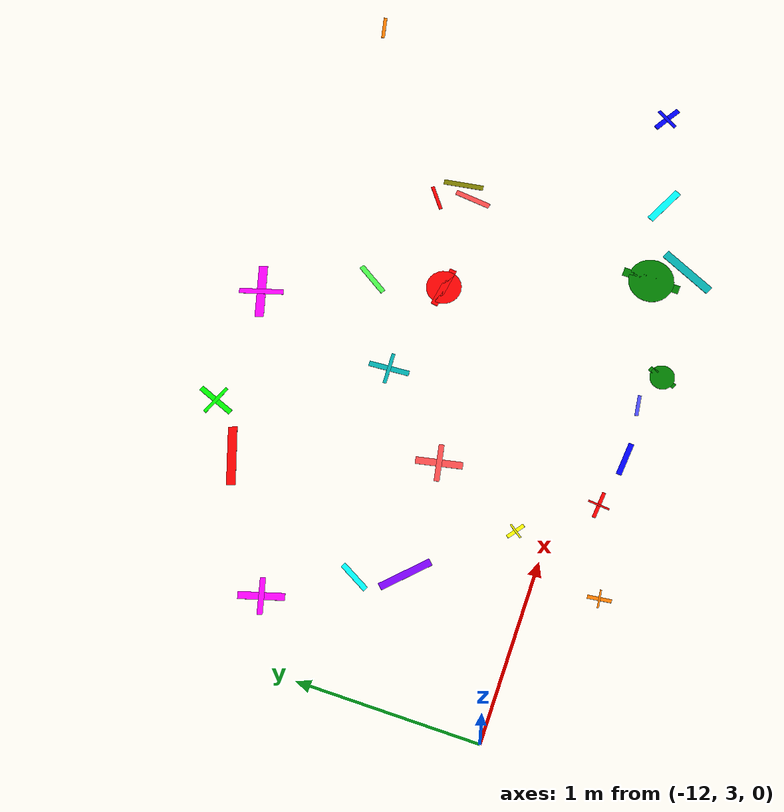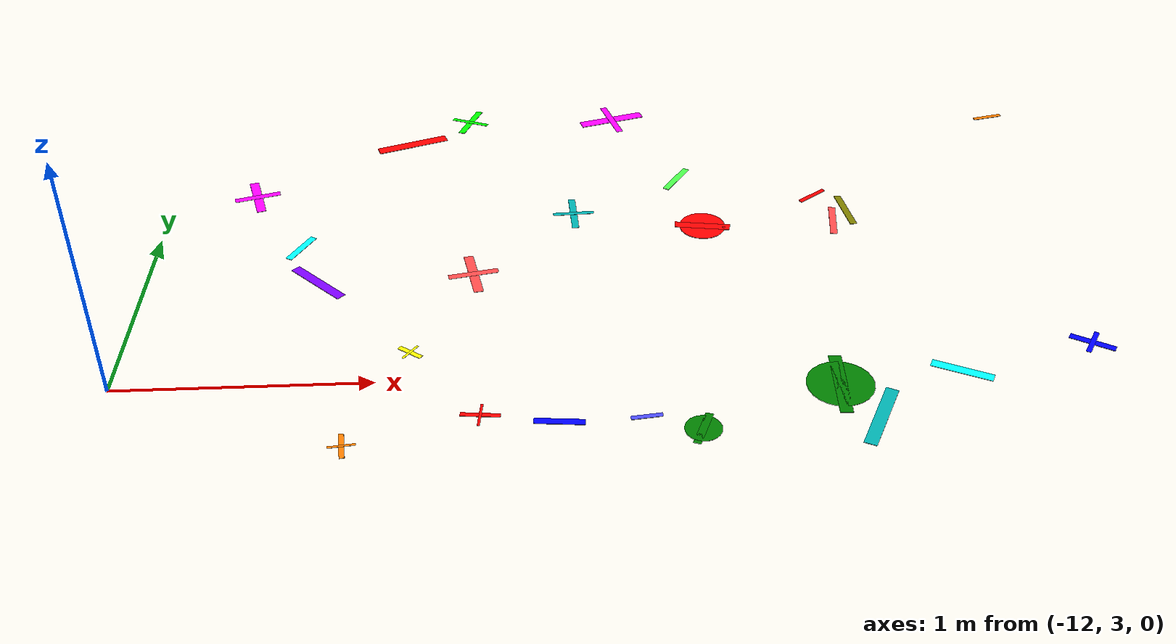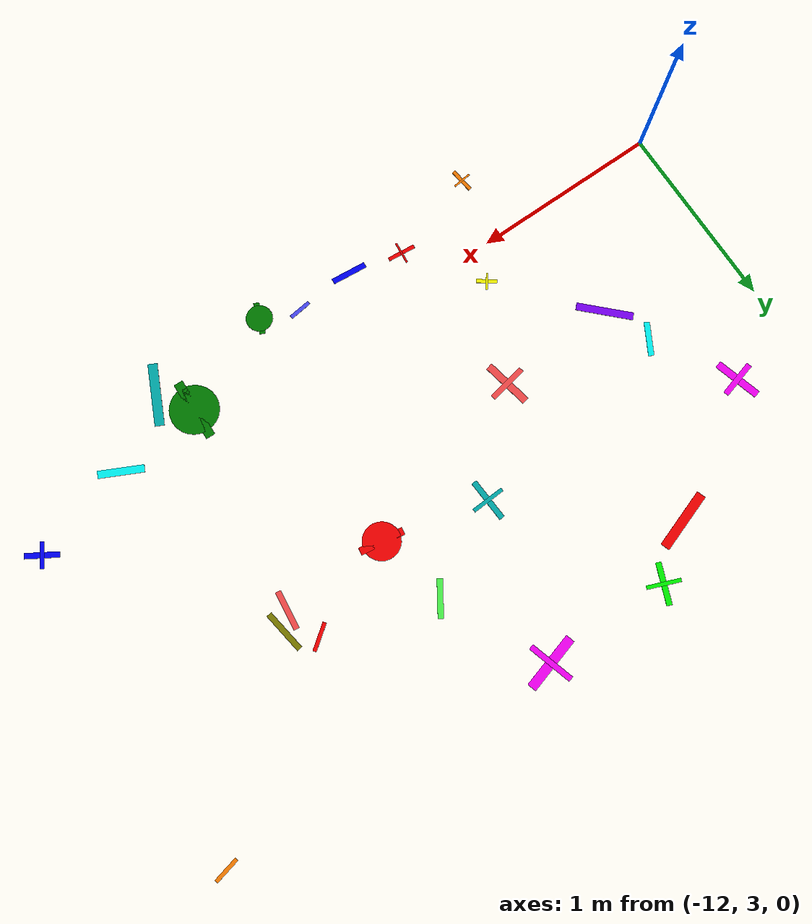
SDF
<sdf version="1.6">
 <world name="default">
  <model name="letter_L_290">
   <static>true</static>
   <pose>-11.64 4.33 0.005 0 0 4.992</pose>
   <link name="link">
    <visual name="visual">
     <geometry><box><size>0.25 0.04 0.002</size></box></geometry>
     <material>
      <ambient>1.0 0.0 1.0 1</ambient>
      <diffuse>1.0 0.0 1.0 1</diffuse>
      <specular>0.1 0.1 0.1 1</specular>
     </material>
    </visual>
    <visual name="visual2">
     <pose>0 0 0.001 0 0 1.57</pose>
     <geometry><box><size>0.20 0.03 0.001</size></box></geometry>
     <material><ambient>1.0 0.0 1.0 1</ambient><diffuse>1.0 0.0 1.0 1</diffuse></material>
    </visual>
   </link>
  </model>
  <model name="letter_F_364">
   <static>true</static>
   <pose>-10.60 2.79 0.005 0 0 6.189</pose>
   <link name="link">
    <visual name="visual">
     <geometry><box><size>0.15 0.02 0.002</size></box></geometry>
     <material>
      <ambient>1.0 0.0 0.0 1</ambient>
      <diffuse>1.0 0.0 0.0 1</diffuse>
      <specular>0.1 0.1 0.1 1</specular>
     </material>
    </visual>
    <visual name="visual2">
     <pose>0 0 0.001 0 0 1.57</pose>
     <geometry><box><size>0.12 0.01 0.001</size></box></geometry>
     <material><ambient>1.0 0.0 0.0 1</ambient><diffuse>1.0 0.0 0.0 1</diffuse></material>
    </visual>
   </link>
  </model>
  <model name="letter_H_365">
   <static>true</static>
   <pose>-10.88 3.17 0.006 0 0 5.649</pose>
   <link name="link">
    <visual name="visual">
     <geometry><box><size>0.11 0.02 0.002</size></box></geometry>
     <material>
      <ambient>1.0 1.0 0.0 1</ambient>
      <diffuse>1.0 1.0 0.0 1</diffuse>
      <specular>0.1 0.1 0.1 1</specular>
     </material>
    </visual>
    <visual name="visual2">
     <pose>0 0 0.001 0 0 1.57</pose>
     <geometry><box><size>0.09 0.01 0.001</size></box></geometry>
     <material><ambient>1.0 1.0 0.0 1</ambient><diffuse>1.0 1.0 0.0 1</diffuse></material>
    </visual>
   </link>
  </model>
  <model name="letter_I_366">
   <static>true</static>
   <pose>-11.09 2.64 0.011 0 0 1.695</pose>
   <link name="link">
    <visual name="visual">
     <geometry><box><size>0.13 0.02 0.002</size></box></geometry>
     <material>
      <ambient>1.0 0.5 0.0 1</ambient>
      <diffuse>1.0 0.5 0.0 1</diffuse>
      <specular>0.1 0.1 0.1 1</specular>
     </material>
    </visual>
    <visual name="visual2">
     <pose>0 0 0.001 0 0 1.57</pose>
     <geometry><box><size>0.10 0.01 0.001</size></box></geometry>
     <material><ambient>1.0 0.5 0.0 1</ambient><diffuse>1.0 0.5 0.0 1</diffuse></material>
    </visual>
   </link>
  </model>
  <model name="letter_H_367">
   <static>true</static>
   <pose>-10.65 3.68 0.007 0 0 4.908</pose>
   <link name="link">
    <visual name="visual">
     <geometry><box><size>0.26 0.04 0.002</size></box></geometry>
     <material>
      <ambient>1.0 0.3 0.3 1</ambient>
      <diffuse>1.0 0.3 0.3 1</diffuse>
      <specular>0.1 0.1 0.1 1</specular>
     </material>
    </visual>
    <visual name="visual2">
     <pose>0 0 0.001 0 0 1.57</pose>
     <geometry><box><size>0.21 0.03 0.001</size></box></geometry>
     <material><ambient>1.0 0.3 0.3 1</ambient><diffuse>1.0 0.3 0.3 1</diffuse></material>
    </visual>
   </link>
  </model>
  <model name="letter_Z_368">
   <static>true</static>
   <pose>-11.29 3.65 0.008 0 0 5.500</pose>
   <link name="link">
    <visual name="visual">
     <geometry><box><size>0.30 0.04 0.002</size></box></geometry>
     <material>
      <ambient>0.5 0.0 1.0 1</ambient>
      <diffuse>0.5 0.0 1.0 1</diffuse>
      <specular>0.1 0.1 0.1 1</specular>
     </material>
    </visual>
   </link>
  </model>
  <model name="letter_X_369">
   <static>true</static>
   <pose>-11.39 3.90 0.012 0 0 1.068</pose>
   <link name="link">
    <visual name="visual">
     <geometry><box><size>0.18 0.03 0.002</size></box></geometry>
     <material>
      <ambient>0.0 1.0 1.0 1</ambient>
      <diffuse>0.0 1.0 1.0 1</diffuse>
      <specular>0.1 0.1 0.1 1</specular>
     </material>
    </visual>
   </link>
  </model>
  <model name="letter_X_370">
   <static>true</static>
   <pose>-10.97 4.76 0.008 0 0 0.342</pose>
   <link name="link">
    <visual name="visual">
     <geometry><box><size>0.33 0.05 0.002</size></box></geometry>
     <material>
      <ambient>1.0 0.0 0.0 1</ambient>
      <diffuse>1.0 0.0 0.0 1</diffuse>
      <specular>0.1 0.1 0.1 1</specular>
     </material>
    </visual>
   </link>
  </model>
  <model name="letter_T_371">
   <static>true</static>
   <pose>-10.70 4.96 0.009 0 0 4.333</pose>
   <link name="link">
    <visual name="visual">
     <geometry><box><size>0.22 0.03 0.002</size></box></geometry>
     <material>
      <ambient>0.0 1.0 0.0 1</ambient>
      <diffuse>0.0 1.0 0.0 1</diffuse>
      <specular>0.1 0.1 0.1 1</specular>
     </material>
    </visual>
    <visual name="visual2">
     <pose>0 0 0.001 0 0 1.57</pose>
     <geometry><box><size>0.18 0.02 0.001</size></box></geometry>
     <material><ambient>0.0 1.0 0.0 1</ambient><diffuse>0.0 1.0 0.0 1</diffuse></material>
    </visual>
   </link>
  </model>
  <model name="letter_G_443">
   <static>true</static>
   <pose>-9.79 2.67 0.010 0 0 4.339</pose>
   <link name="link">
    <visual name="visual">
     <geometry><box><size>0.17 0.03 0.002</size></box></geometry>
     <material>
      <ambient>0.0 0.5 0.0 1</ambient>
      <diffuse>0.0 0.5 0.0 1</diffuse>
      <specular>0.1 0.1 0.1 1</specular>
     </material>
    </visual>
    <visual name="visual2">
     <geometry><cylinder><radius>0.07</radius><length>0.002</length></cylinder></geometry>
     <material><ambient>0.0 0.5 0.0 1</ambient><diffuse>0.0 0.5 0.0 1</diffuse></material>
    </visual>
   </link>
  </model>
  <model name="letter_R_444">
   <static>true</static>
   <pose>-9.99 2.75 0.006 0 0 0.124</pose>
   <link name="link">
    <visual name="visual">
     <geometry><box><size>0.12 0.02 0.002</size></box></geometry>
     <material>
      <ambient>0.3 0.3 1.0 1</ambient>
      <diffuse>0.3 0.3 1.0 1</diffuse>
      <specular>0.1 0.1 0.1 1</specular>
     </material>
    </visual>
   </link>
  </model>
  <model name="letter_P_445">
   <static>true</static>
   <pose>-10.31 2.73 0.013 0 0 6.193</pose>
   <link name="link">
    <visual name="visual">
     <geometry><box><size>0.19 0.03 0.002</size></box></geometry>
     <material>
      <ambient>0.0 0.0 1.0 1</ambient>
      <diffuse>0.0 0.0 1.0 1</diffuse>
      <specular>0.1 0.1 0.1 1</specular>
     </material>
    </visual>
   </link>
  </model>
  <model name="letter_M_446">
   <static>true</static>
   <pose>-9.74 4.39 0.005 0 0 0.993</pose>
   <link name="link">
    <visual name="visual">
     <geometry><box><size>0.20 0.03 0.002</size></box></geometry>
     <material>
      <ambient>0.3 1.0 0.3 1</ambient>
      <diffuse>0.3 1.0 0.3 1</diffuse>
      <specular>0.1 0.1 0.1 1</specular>
     </material>
    </visual>
   </link>
  </model>
  <model name="letter_I_447">
   <static>true</static>
   <pose>-10.22 4.12 0.007 0 0 1.623</pose>
   <link name="link">
    <visual name="visual">
     <geometry><box><size>0.23 0.03 0.002</size></box></geometry>
     <material>
      <ambient>0.0 0.7 0.7 1</ambient>
      <diffuse>0.0 0.7 0.7 1</diffuse>
      <specular>0.1 0.1 0.1 1</specular>
     </material>
    </visual>
    <visual name="visual2">
     <pose>0 0 0.001 0 0 1.57</pose>
     <geometry><box><size>0.18 0.02 0.001</size></box></geometry>
     <material><ambient>0.0 0.7 0.7 1</ambient><diffuse>0.0 0.7 0.7 1</diffuse></material>
    </visual>
   </link>
  </model>
  <model name="letter_G_448">
   <static>true</static>
   <pose>-9.66 3.99 0.009 0 0 2.994</pose>
   <link name="link">
    <visual name="visual">
     <geometry><box><size>0.24 0.04 0.002</size></box></geometry>
     <material>
      <ambient>1.0 0.0 0.0 1</ambient>
      <diffuse>1.0 0.0 0.0 1</diffuse>
      <specular>0.1 0.1 0.1 1</specular>
     </material>
    </visual>
    <visual name="visual2">
     <geometry><cylinder><radius>0.10</radius><length>0.002</length></cylinder></geometry>
     <material><ambient>1.0 0.0 0.0 1</ambient><diffuse>1.0 0.0 0.0 1</diffuse></material>
    </visual>
   </link>
  </model>
  <model name="letter_A_449">
   <static>true</static>
   <pose>-10.01 4.96 0.004 0 0 3.429</pose>
   <link name="link">
    <visual name="visual">
     <geometry><box><size>0.31 0.05 0.002</size></box></geometry>
     <material>
      <ambient>1.0 0.0 1.0 1</ambient>
      <diffuse>1.0 0.0 1.0 1</diffuse>
      <specular>0.1 0.1 0.1 1</specular>
     </material>
    </visual>
    <visual name="visual2">
     <pose>0 0 0.001 0 0 1.57</pose>
     <geometry><box><size>0.25 0.03 0.001</size></box></geometry>
     <material><ambient>1.0 0.0 1.0 1</ambient><diffuse>1.0 0.0 1.0 1</diffuse></material>
    </visual>
   </link>
  </model>
  <model name="letter_Q_522">
   <static>true</static>
   <pose>-9.25 2.89 0.013 0 0 4.674</pose>
   <link name="link">
    <visual name="visual">
     <geometry><box><size>0.33 0.05 0.002</size></box></geometry>
     <material>
      <ambient>0.0 0.5 0.0 1</ambient>
      <diffuse>0.0 0.5 0.0 1</diffuse>
      <specular>0.1 0.1 0.1 1</specular>
     </material>
    </visual>
    <visual name="visual2">
     <geometry><cylinder><radius>0.13</radius><length>0.002</length></cylinder></geometry>
     <material><ambient>0.0 0.5 0.0 1</ambient><diffuse>0.0 0.5 0.0 1</diffuse></material>
    </visual>
   </link>
  </model>
  <model name="letter_R_523">
   <static>true</static>
   <pose>-8.77 2.95 0.008 0 0 2.687</pose>
   <link name="link">
    <visual name="visual">
     <geometry><box><size>0.24 0.04 0.002</size></box></geometry>
     <material>
      <ambient>0.0 1.0 1.0 1</ambient>
      <diffuse>0.0 1.0 1.0 1</diffuse>
      <specular>0.1 0.1 0.1 1</specular>
     </material>
    </visual>
   </link>
  </model>
  <model name="letter_S_524">
   <static>true</static>
   <pose>-9.13 2.71 0.004 0 0 4.263</pose>
   <link name="link">
    <visual name="visual">
     <geometry><box><size>0.33 0.05 0.002</size></box></geometry>
     <material>
      <ambient>0.0 0.7 0.7 1</ambient>
      <diffuse>0.0 0.7 0.7 1</diffuse>
      <specular>0.1 0.1 0.1 1</specular>
     </material>
    </visual>
   </link>
  </model>
  <model name="letter_P_525">
   <static>true</static>
   <pose>-9.01 4.09 0.006 0 0 4.855</pose>
   <link name="link">
    <visual name="visual">
     <geometry><box><size>0.23 0.03 0.002</size></box></geometry>
     <material>
      <ambient>0.5 0.5 0.0 1</ambient>
      <diffuse>0.5 0.5 0.0 1</diffuse>
      <specular>0.1 0.1 0.1 1</specular>
     </material>
    </visual>
   </link>
  </model>
  <model name="letter_R_526">
   <static>true</static>
   <pose>-9.08 4.01 0.005 0 0 1.447</pose>
   <link name="link">
    <visual name="visual">
     <geometry><box><size>0.21 0.03 0.002</size></box></geometry>
     <material>
      <ambient>1.0 0.3 0.3 1</ambient>
      <diffuse>1.0 0.3 0.3 1</diffuse>
      <specular>0.1 0.1 0.1 1</specular>
     </material>
    </visual>
   </link>
  </model>
  <model name="letter_M_527">
   <static>true</static>
   <pose>-9.14 4.21 0.009 0 0 0.643</pose>
   <link name="link">
    <visual name="visual">
     <geometry><box><size>0.15 0.02 0.002</size></box></geometry>
     <material>
      <ambient>1.0 0.0 0.0 1</ambient>
      <diffuse>1.0 0.0 0.0 1</diffuse>
      <specular>0.1 0.1 0.1 1</specular>
     </material>
    </visual>
   </link>
  </model>
  <model name="letter_E_605">
   <static>true</static>
   <pose>-8.22 3.09 0.011 0 0 2.595</pose>
   <link name="link">
    <visual name="visual">
     <geometry><box><size>0.18 0.03 0.002</size></box></geometry>
     <material>
      <ambient>0.0 0.0 1.0 1</ambient>
      <diffuse>0.0 0.0 1.0 1</diffuse>
      <specular>0.1 0.1 0.1 1</specular>
     </material>
    </visual>
    <visual name="visual2">
     <pose>0 0 0.001 0 0 1.57</pose>
     <geometry><box><size>0.14 0.02 0.001</size></box></geometry>
     <material><ambient>0.0 0.0 1.0 1</ambient><diffuse>0.0 0.0 1.0 1</diffuse></material>
    </visual>
   </link>
  </model>
  <model name="letter_R_610">
   <static>true</static>
   <pose>-8.16 4.88 0.011 0 0 0.228</pose>
   <link name="link">
    <visual name="visual">
     <geometry><box><size>0.14 0.02 0.002</size></box></geometry>
     <material>
      <ambient>1.0 0.5 0.0 1</ambient>
      <diffuse>1.0 0.5 0.0 1</diffuse>
      <specular>0.1 0.1 0.1 1</specular>
     </material>
    </visual>
   </link>
  </model>
 </world>
</sdf>
